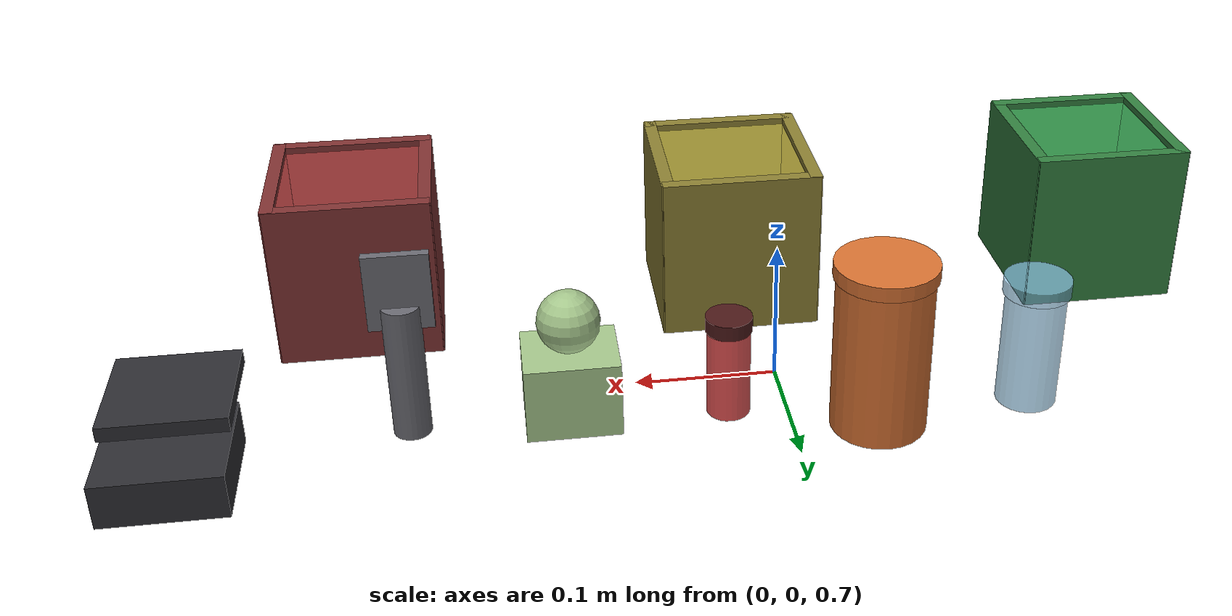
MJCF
<mujoco model="disaster_objects">

  <default>
    <geom condim="4" friction="0.7 0.05 0.02" />
    <default class="fragile">
      <geom rgba="0.55 0.78 0.92 0.7" condim="6" friction="0.3 0.02 0.01" />
      <joint damping="0.5" armature="0.001" />
    </default>
    <default class="sturdy">
      <geom rgba="0.85 0.45 0.20 1" condim="4" friction="1.2 0.10 0.05" />
      <joint damping="2.0" armature="0.01" />
    </default>
    <default class="hazardous">
      <geom rgba="0.85 0.18 0.18 0.85" condim="6" friction="0.5 0.05 0.02" />
      <joint damping="1.0" armature="0.005" />
    </default>
    <default class="soft">
      <geom rgba="0.65 0.78 0.55 1" condim="4" friction="1.5 0.15 0.08" />
      <joint damping="3.0" armature="0.005" />
    </default>
    <default class="sharp">
      <geom rgba="0.42 0.42 0.45 1" condim="6" friction="0.9 0.05 0.02" />
      <joint damping="1.5" armature="0.005" />
    </default>
  </default>

  <worldbody>
    <!-- OBJECT 1: Fragile glass vial                                 -->
    <!--   Mass ≈ 0.08 kg, slides along a 1-D track (equality constraint) -->
    <body name="obj_glass" pos="-0.15 0.10 0.770">
      <joint name="track_glass_x" type="slide" axis="1 0 0" class="fragile"
             range="-0.30 0.30" damping="0.2" />
      <joint name="track_glass_y" type="slide" axis="0 1 0" class="fragile"
             range="-0.05 0.05" damping="0.2" />
      <joint name="track_glass_z" type="slide" axis="0 0 1" class="fragile"
             range="-0.05 0.20" damping="0.2" />
      <joint name="track_glass_rot" type="hinge" axis="0 0 1" class="fragile"
             range="-1.0 1.0" damping="0.5" />
      <inertial pos="0 0 0.04" mass="0.08" diaginertia="2e-4 2e-4 1e-4" />
      <geom name="geom_obj_glass" type="cylinder"
            size="0.020 0.040" rgba="0.55 0.78 0.92 0.7" class="fragile" />
      <geom name="geom_obj_glass_cap" type="cylinder"
            size="0.022 0.005" pos="0 0 0.045" rgba="0.55 0.78 0.92 0.7"
            class="fragile" />
      <site name="label_glass" pos="0 0 0.040" size="0.012"
           rgba="0.55 0.78 0.92 0.6" group="3" />
    </body>

    <!-- OBJECT 2: Sturdy metal can                                   -->
    <!--   Mass ≈ 0.45 kg, free 6-DOF rigid body                      -->
    <body name="obj_can" pos="-0.05 0.10 0.775">
      <freejoint name="free_can" />
      <inertial pos="0 0 0.045" mass="0.45" diaginertia="2e-3 2e-3 1e-3" />
      <geom name="geom_obj_can" type="cylinder"
            size="0.032 0.055" rgba="0.85 0.45 0.20 1" class="sturdy" />
      <geom name="geom_obj_can_top" type="cylinder"
            size="0.034 0.005" pos="0 0 0.060" rgba="0.85 0.45 0.20 1"
            class="sturdy" />
      <site name="label_can" pos="0 0 0.055" size="0.015"
           rgba="0.85 0.45 0.20 0.6" group="3" />
    </body>

    <!-- OBJECT 3: Hazardous chemical vial (small, smooth, red)       -->
    <!--   Mass ≈ 0.15 kg, free 6-DOF rigid body                      -->
    <body name="obj_vial" pos="0.05 0.10 0.770">
      <freejoint name="free_vial" />
      <inertial pos="0 0 0.030" mass="0.15" diaginertia="5e-4 5e-4 2e-4" />
      <geom name="geom_obj_vial_body" type="cylinder"
            size="0.014 0.030" rgba="0.85 0.18 0.18 0.85" class="hazardous" />
      <geom name="geom_obj_vial_cap" type="cylinder"
            size="0.015 0.005" pos="0 0 0.035" rgba="0.30 0.10 0.10 1"
            class="hazardous" />
      <site name="label_vial" pos="0 0 0.030" size="0.012"
           rgba="0.85 0.18 0.18 0.8" group="3" />
    </body>

    <!-- OBJECT 4: Soft plush toy (low mass, high friction)           -->
    <!--   Mass ≈ 0.05 kg                                             -->
    <body name="obj_toy" pos="0.15 0.10 0.770">
      <freejoint name="free_toy" />
      <inertial pos="0 0 0.025" mass="0.05" diaginertia="3e-4 3e-4 2e-4" />
      <!-- Body: rounded box -->
      <geom name="geom_obj_toy_body" type="box"
            size="0.030 0.025 0.025" rgba="0.65 0.78 0.55 1" class="soft" />
      <!-- Head: sphere -->
      <geom name="geom_obj_toy_head" type="sphere"
            size="0.020" pos="0 0 0.045" rgba="0.65 0.78 0.55 1" class="soft" />
      <site name="label_toy" pos="0 0 0.025" size="0.012"
           rgba="0.65 0.78 0.55 0.7" group="3" />
    </body>

    <!-- OBJECT 5: Sharp broken tool (irregular shape)                -->
    <!--   Mass ≈ 0.30 kg, mixed-mass composite                       -->
    <body name="obj_tool" pos="0.25 0.10 0.770">
      <freejoint name="free_tool" />
      <inertial pos="0 0 0.020" mass="0.30" diaginertia="8e-4 8e-4 4e-4" />
      <!-- Handle: cylinder -->
      <geom name="geom_obj_tool_handle" type="cylinder"
            size="0.012 0.045" pos="0 0 0.020" rgba="0.42 0.42 0.45 1" class="sharp" />
      <!-- Blade: thin elongated box (the "sharp" part) -->
      <geom name="geom_obj_tool_blade" type="box"
            size="0.020 0.003 0.025" pos="0 0 0.075" rgba="0.42 0.42 0.45 1"
            class="sharp" />
      <site name="label_tool" pos="0 0 0.020" size="0.012"
           rgba="0.42 0.42 0.45 0.7" group="3" />
    </body>

    <!-- TRIAGE BINS — three color-coded deposit stations             -->
    <body name="bin_fragile" pos="-0.30 -0.20 0.720">
      <geom name="geom_bin_fragile" type="box" size="0.060 0.060 0.060"
            rgba="0.25 0.65 0.35 0.85" mass="2.0" />
      <geom name="geom_bin_fragile_wall1" type="box" size="0.062 0.005 0.065"
            pos="0 0.058 0" rgba="0.20 0.50 0.25 1" mass="0.5" />
      <geom name="geom_bin_fragile_wall2" type="box" size="0.062 0.005 0.065"
            pos="0 -0.058 0" rgba="0.20 0.50 0.25 1" mass="0.5" />
      <geom name="geom_bin_fragile_wall3" type="box" size="0.005 0.062 0.065"
            pos="0.058 0 0" rgba="0.20 0.50 0.25 1" mass="0.5" />
      <geom name="geom_bin_fragile_wall4" type="box" size="0.005 0.062 0.065"
            pos="-0.058 0 0" rgba="0.20 0.50 0.25 1" mass="0.5" />
      <site name="bin_fragile_target" pos="0 0 0.060" size="0.040"
           rgba="0.25 0.65 0.35 0.4" group="3" type="box" />
    </body>

    <body name="bin_sturdy" pos="0.0 -0.20 0.720">
      <geom name="geom_bin_sturdy" type="box" size="0.060 0.060 0.060"
            rgba="0.70 0.65 0.25 0.85" mass="2.0" />
      <geom name="geom_bin_sturdy_wall1" type="box" size="0.062 0.005 0.065"
            pos="0 0.058 0" rgba="0.55 0.50 0.20 1" mass="0.5" />
      <geom name="geom_bin_sturdy_wall2" type="box" size="0.062 0.005 0.065"
            pos="0 -0.058 0" rgba="0.55 0.50 0.20 1" mass="0.5" />
      <geom name="geom_bin_sturdy_wall3" type="box" size="0.005 0.062 0.065"
            pos="0.058 0 0" rgba="0.55 0.50 0.20 1" mass="0.5" />
      <geom name="geom_bin_sturdy_wall4" type="box" size="0.005 0.062 0.065"
            pos="-0.058 0 0" rgba="0.55 0.50 0.20 1" mass="0.5" />
      <site name="bin_sturdy_target" pos="0 0 0.060" size="0.040"
           rgba="0.70 0.65 0.25 0.4" group="3" type="box" />
    </body>

    <body name="bin_hazardous" pos="0.30 -0.20 0.720">
      <geom name="geom_bin_hazardous" type="box" size="0.060 0.060 0.060"
            rgba="0.65 0.25 0.25 0.85" mass="2.0" />
      <geom name="geom_bin_hazardous_wall1" type="box" size="0.062 0.005 0.065"
            pos="0 0.058 0" rgba="0.50 0.20 0.20 1" mass="0.5" />
      <geom name="geom_bin_hazardous_wall2" type="box" size="0.062 0.005 0.065"
            pos="0 -0.058 0" rgba="0.50 0.20 0.20 1" mass="0.5" />
      <geom name="geom_bin_hazardous_wall3" type="box" size="0.005 0.062 0.065"
            pos="0.058 0 0" rgba="0.50 0.20 0.20 1" mass="0.5" />
      <geom name="geom_bin_hazardous_wall4" type="box" size="0.005 0.062 0.065"
            pos="-0.058 0 0" rgba="0.50 0.20 0.20 1" mass="0.5" />
      <site name="bin_hazardous_target" pos="0 0 0.060" size="0.040"
           rgba="0.65 0.25 0.25 0.4" group="3" type="box" />
    </body>

    <!-- EQUALITY CONSTRAINT DEMO 1: Hinged lid on a small container  -->
    <!--   A small box on the table has a hinged lid that the robot   -->
    <!--   must open with one finger while grasping the base.         -->
    <body name="container_base" pos="0.40 0.10 0.735">
      <geom name="geom_container_base" type="box" size="0.040 0.040 0.015"
            rgba="0.18 0.18 0.20 1" mass="0.5" />
    </body>
    <body name="container_lid" pos="0.40 0.10 0.760">
      <joint name="lid_hinge" type="hinge" axis="1 0 0"
             range="-0.05 1.57" damping="0.5" />
      <geom name="geom_container_lid" type="box" size="0.040 0.040 0.005"
            rgba="0.18 0.18 0.20 1" mass="0.10" pos="0 -0.040 0" />
      <!-- Snap-latch: when lid reaches ~80 deg, this site triggers a visual cue -->
      <site name="lid_snap_target" pos="0 -0.040 0.005" size="0.008"
           rgba="1 1 0 0.5" group="3" />
    </body>
  </worldbody>

  <!-- Equality constraint: lid rotates around the base's top-back edge.
       This pivots the lid relative to the container base.  -->
  <equality>
    <connect name="eq_lid_pivot" active="true"
             body1="container_base" body2="container_lid"
             anchor="0.40 0.060 0.760" />
  </equality>

  <!-- Object position sensors for state feedback (used by RL + scripted controllers) -->
  <sensor>
    <framepos name="s_obj_glass_pos"  objtype="body" objname="obj_glass" />
    <framepos name="s_obj_can_pos"    objtype="body" objname="obj_can" />
    <framepos name="s_obj_vial_pos"   objtype="body" objname="obj_vial" />
    <framepos name="s_obj_toy_pos"    objtype="body" objname="obj_toy" />
    <framepos name="s_obj_tool_pos"   objtype="body" objname="obj_tool" />
  </sensor>
</mujoco>
